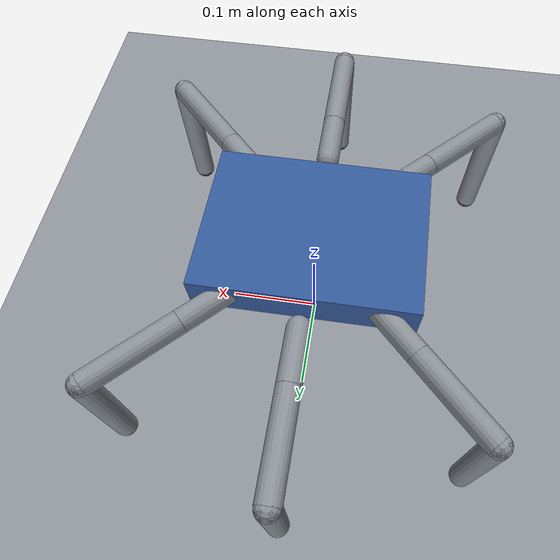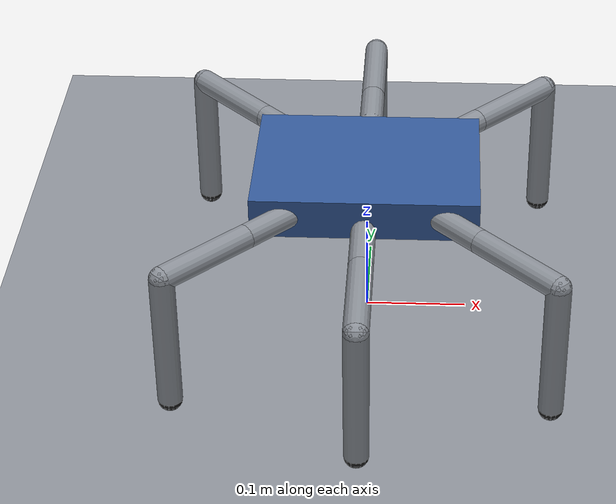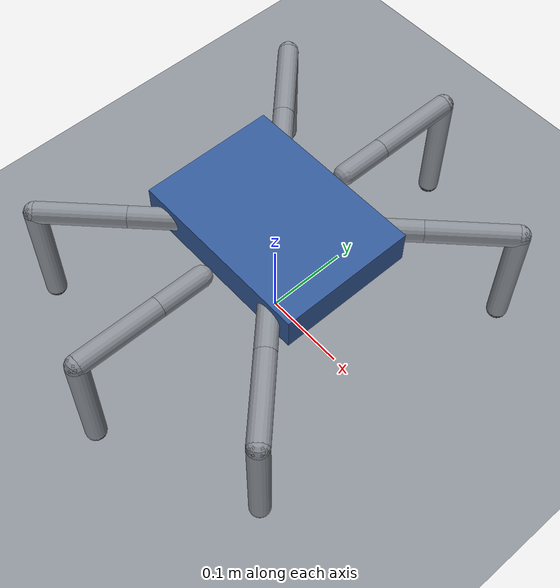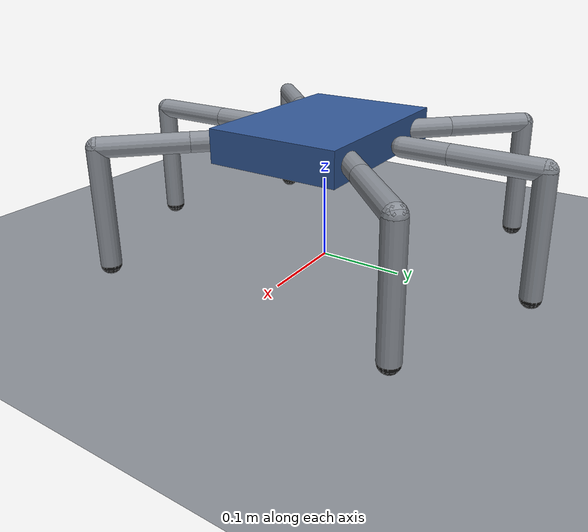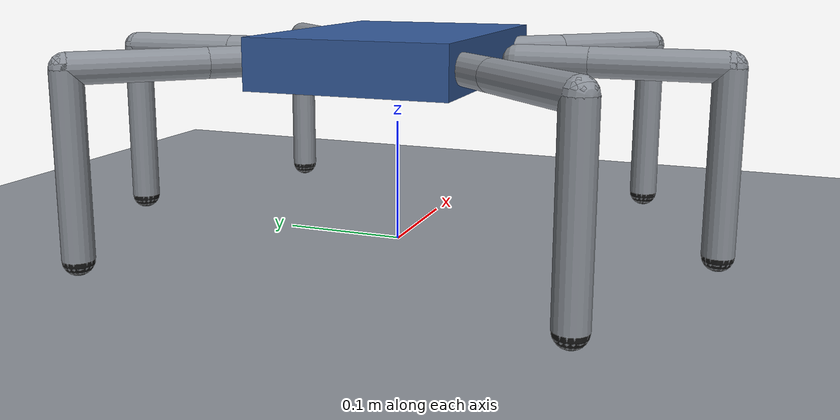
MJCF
<!-- AUTO-GENERATED by build_hexapod.py. Edit the parameters there, not this file. -->
<mujoco model="iee_hexapod">
  <compiler angle="radian" autolimits="true"/>
  <option timestep="0.004" integrator="implicitfast"/>

  <default>
    <geom contype="0" conaffinity="0" rgba="0.55 0.57 0.6 1"/>
    <joint damping="0.15" armature="0.005" frictionloss="0.03"/>
    <position kp="20" forcerange="-2.94 2.94"/>
    <default class="link">
      <geom type="capsule" size="0.012"/>
    </default>
    <default class="foot">
      <geom type="sphere" size="0.012" contype="1" conaffinity="0"
            friction="1.0 0.02 0.01" rgba="0.1 0.1 0.1 1"/>
    </default>
    <default class="coxa">
      <joint axis="0 0 1" range="-0.8 0.8"/>
      <position ctrlrange="-0.8 0.8"/>
    </default>
    <default class="femur">
      <joint axis="0 -1 0" range="-1.2 1.6"/>
      <position ctrlrange="-1.2 1.6"/>
    </default>
    <default class="tibia">
      <joint axis="0 -1 0" range="-1.6 1.2"/>
      <position ctrlrange="-1.6 1.2"/>
    </default>
  </default>

  <asset>
    <texture name="grid" type="2d" builtin="checker" rgb1="0.2 0.3 0.4" rgb2="0.1 0.2 0.3"
             width="512" height="512"/>
    <material name="grid" texture="grid" texrepeat="8 8" reflectance="0.1"/>
    <texture type="skybox" builtin="gradient" rgb1="0.4 0.6 0.8" rgb2="0 0 0" width="512" height="512"/>
  </asset>

  <worldbody>
    <light pos="0 0 3" dir="0 0 -1" directional="true"/>
    <geom name="floor" type="plane" size="0 0 0.05" material="grid" contype="1" conaffinity="1"/>

    <body name="torso" pos="0 0 0.155">
      <freejoint name="root"/>
      <geom name="torso" type="box" size="0.11 0.08 0.02" mass="1.6"
            contype="1" conaffinity="0" rgba="0.2 0.35 0.6 1"/>
      <site name="imu" pos="0 0 0" size="0.01"/>
      <camera name="track" mode="trackcom" pos="0 -1.0 0.6" xyaxes="1 0 0 0 0.5 1"/>
    <body name="LF_coxa" pos="0.0707 0.0707 0" euler="0 0 0.7854">
      <joint name="LF_coxa" class="coxa"/>
      <geom class="link" fromto="0 0 0 0.055 0 0" mass="0.075"/>
      <body name="LF_femur" pos="0.055 0 0">
        <joint name="LF_femur" class="femur"/>
        <geom class="link" fromto="0 0 0 0.1 0 0" mass="0.085"/>
        <body name="LF_tibia" pos="0.1 0 0">
          <joint name="LF_tibia" class="tibia"/>
          <geom class="link" fromto="0 0 0 0 0 -0.14" mass="0.035"/>
          <geom name="LF_foot" class="foot" pos="0 0 -0.14" mass="0.005"/>
          <site name="LF_foot" pos="0 0 -0.14" size="0.005"/>
        </body>
      </body>
    </body>
    <body name="LM_coxa" pos="0 0.1 0" euler="0 0 1.5708">
      <joint name="LM_coxa" class="coxa"/>
      <geom class="link" fromto="0 0 0 0.055 0 0" mass="0.075"/>
      <body name="LM_femur" pos="0.055 0 0">
        <joint name="LM_femur" class="femur"/>
        <geom class="link" fromto="0 0 0 0.1 0 0" mass="0.085"/>
        <body name="LM_tibia" pos="0.1 0 0">
          <joint name="LM_tibia" class="tibia"/>
          <geom class="link" fromto="0 0 0 0 0 -0.14" mass="0.035"/>
          <geom name="LM_foot" class="foot" pos="0 0 -0.14" mass="0.005"/>
          <site name="LM_foot" pos="0 0 -0.14" size="0.005"/>
        </body>
      </body>
    </body>
    <body name="LR_coxa" pos="-0.0707 0.0707 0" euler="0 0 2.3562">
      <joint name="LR_coxa" class="coxa"/>
      <geom class="link" fromto="0 0 0 0.055 0 0" mass="0.075"/>
      <body name="LR_femur" pos="0.055 0 0">
        <joint name="LR_femur" class="femur"/>
        <geom class="link" fromto="0 0 0 0.1 0 0" mass="0.085"/>
        <body name="LR_tibia" pos="0.1 0 0">
          <joint name="LR_tibia" class="tibia"/>
          <geom class="link" fromto="0 0 0 0 0 -0.14" mass="0.035"/>
          <geom name="LR_foot" class="foot" pos="0 0 -0.14" mass="0.005"/>
          <site name="LR_foot" pos="0 0 -0.14" size="0.005"/>
        </body>
      </body>
    </body>
    <body name="RF_coxa" pos="0.0707 -0.0707 0" euler="0 0 -0.7854">
      <joint name="RF_coxa" class="coxa"/>
      <geom class="link" fromto="0 0 0 0.055 0 0" mass="0.075"/>
      <body name="RF_femur" pos="0.055 0 0">
        <joint name="RF_femur" class="femur"/>
        <geom class="link" fromto="0 0 0 0.1 0 0" mass="0.085"/>
        <body name="RF_tibia" pos="0.1 0 0">
          <joint name="RF_tibia" class="tibia"/>
          <geom class="link" fromto="0 0 0 0 0 -0.14" mass="0.035"/>
          <geom name="RF_foot" class="foot" pos="0 0 -0.14" mass="0.005"/>
          <site name="RF_foot" pos="0 0 -0.14" size="0.005"/>
        </body>
      </body>
    </body>
    <body name="RM_coxa" pos="0 -0.1 0" euler="0 0 -1.5708">
      <joint name="RM_coxa" class="coxa"/>
      <geom class="link" fromto="0 0 0 0.055 0 0" mass="0.075"/>
      <body name="RM_femur" pos="0.055 0 0">
        <joint name="RM_femur" class="femur"/>
        <geom class="link" fromto="0 0 0 0.1 0 0" mass="0.085"/>
        <body name="RM_tibia" pos="0.1 0 0">
          <joint name="RM_tibia" class="tibia"/>
          <geom class="link" fromto="0 0 0 0 0 -0.14" mass="0.035"/>
          <geom name="RM_foot" class="foot" pos="0 0 -0.14" mass="0.005"/>
          <site name="RM_foot" pos="0 0 -0.14" size="0.005"/>
        </body>
      </body>
    </body>
    <body name="RR_coxa" pos="-0.0707 -0.0707 0" euler="0 0 -2.3562">
      <joint name="RR_coxa" class="coxa"/>
      <geom class="link" fromto="0 0 0 0.055 0 0" mass="0.075"/>
      <body name="RR_femur" pos="0.055 0 0">
        <joint name="RR_femur" class="femur"/>
        <geom class="link" fromto="0 0 0 0.1 0 0" mass="0.085"/>
        <body name="RR_tibia" pos="0.1 0 0">
          <joint name="RR_tibia" class="tibia"/>
          <geom class="link" fromto="0 0 0 0 0 -0.14" mass="0.035"/>
          <geom name="RR_foot" class="foot" pos="0 0 -0.14" mass="0.005"/>
          <site name="RR_foot" pos="0 0 -0.14" size="0.005"/>
        </body>
      </body>
    </body>
    </body>
  </worldbody>

  <actuator>
    <position name="LF_coxa" joint="LF_coxa" class="coxa"/>
    <position name="LF_femur" joint="LF_femur" class="femur"/>
    <position name="LF_tibia" joint="LF_tibia" class="tibia"/>
    <position name="LM_coxa" joint="LM_coxa" class="coxa"/>
    <position name="LM_femur" joint="LM_femur" class="femur"/>
    <position name="LM_tibia" joint="LM_tibia" class="tibia"/>
    <position name="LR_coxa" joint="LR_coxa" class="coxa"/>
    <position name="LR_femur" joint="LR_femur" class="femur"/>
    <position name="LR_tibia" joint="LR_tibia" class="tibia"/>
    <position name="RF_coxa" joint="RF_coxa" class="coxa"/>
    <position name="RF_femur" joint="RF_femur" class="femur"/>
    <position name="RF_tibia" joint="RF_tibia" class="tibia"/>
    <position name="RM_coxa" joint="RM_coxa" class="coxa"/>
    <position name="RM_femur" joint="RM_femur" class="femur"/>
    <position name="RM_tibia" joint="RM_tibia" class="tibia"/>
    <position name="RR_coxa" joint="RR_coxa" class="coxa"/>
    <position name="RR_femur" joint="RR_femur" class="femur"/>
    <position name="RR_tibia" joint="RR_tibia" class="tibia"/>
  </actuator>

  <sensor>
    <gyro name="imu_gyro" site="imu"/>
    <accelerometer name="imu_accel" site="imu"/>
    <framequat name="imu_quat" objtype="site" objname="imu"/>
  </sensor>

  <keyframe>
    <key name="home" qpos="0 0 0.155 1 0 0 0 0 0 0 0 0 0 0 0 0 0 0 0 0 0 0 0 0 0" ctrl="0 0 0 0 0 0 0 0 0 0 0 0 0 0 0 0 0 0"/>
  </keyframe>
</mujoco>
